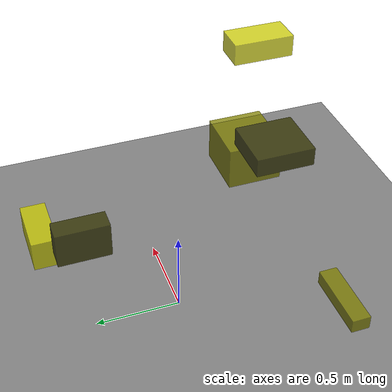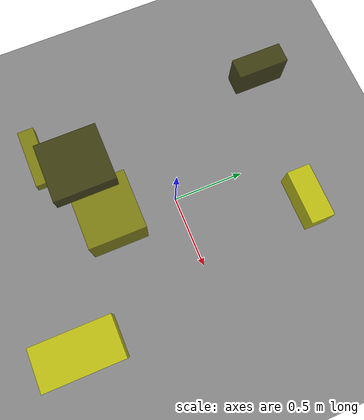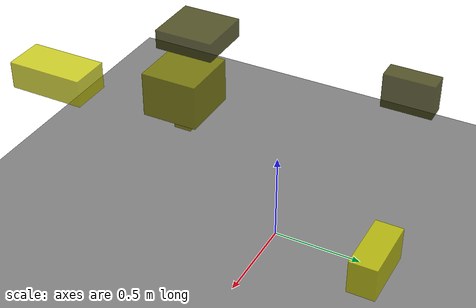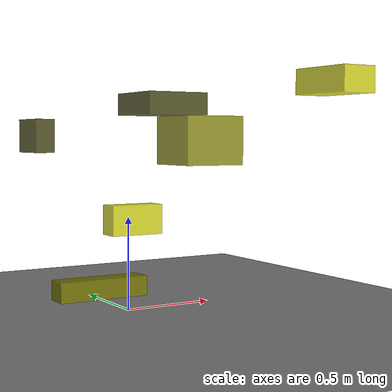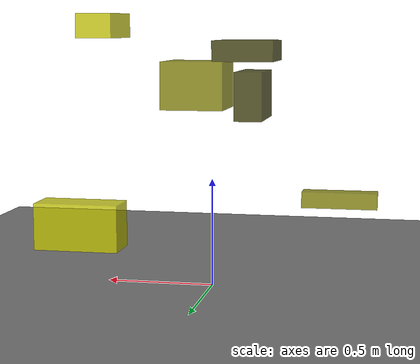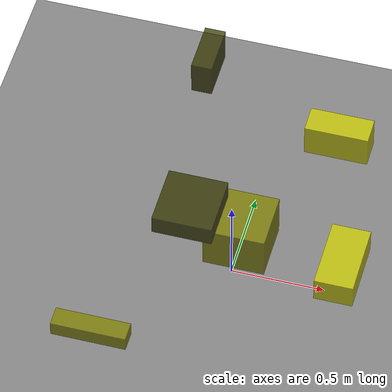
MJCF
<?xml version="1.0"?>
<mujoco model="obstacle_scene">
  <compiler angle="radian" coordinate="local"/>
  <option timestep="0.001" gravity="0 0 -9.81"/>

  <asset>
    <material name="obstacle_mat" rgba="0.8 0.8 0.0 0.8"/>
    <material name="ground_mat" rgba="0.5 0.5 0.5 1"/>
  </asset>

  <worldbody>
    <!-- Ground plane -->
    <geom name="ground" type="plane" size="3 3 0.1" material="ground_mat"/>

    <!-- Obstacles -->
    <body name="obstacle_0" pos="-0.078819 -0.509603 1.081329">
      <geom name="obs_0" type="box" size="0.152446 0.159822 0.051766" rgba="0.2 0.2 0.0 0.8"/>
    </body>
    <body name="obstacle_1" pos="0.167304 -0.450542 0.909873">
      <geom name="obs_1" type="box" size="0.157270 0.149376 0.119481" rgba="0.5 0.5 0.0 0.8"/>
    </body>
    <body name="obstacle_2" pos="0.395719 0.709860 0.410892">
      <geom name="obs_2" type="box" size="0.171039 0.073467 0.093183" rgba="0.8 0.8 0.0 0.8"/>
    </body>
    <body name="obstacle_3" pos="-0.285067 0.587856 0.934191">
      <geom name="obs_3" type="box" size="0.053959 0.136117 0.094854" rgba="0.2 0.2 0.0 0.8"/>
    </body>
    <body name="obstacle_4" pos="-0.533502 -0.779024 0.287916">
      <geom name="obs_4" type="box" size="0.198545 0.053235 0.041673" rgba="0.5 0.5 0.0 0.8"/>
    </body>
    <body name="obstacle_5" pos="0.757479 -0.769009 1.205954">
      <geom name="obs_5" type="box" size="0.096293 0.184211 0.065945" rgba="0.8 0.8 0.0 0.8"/>
    </body>
  </worldbody>
</mujoco>
